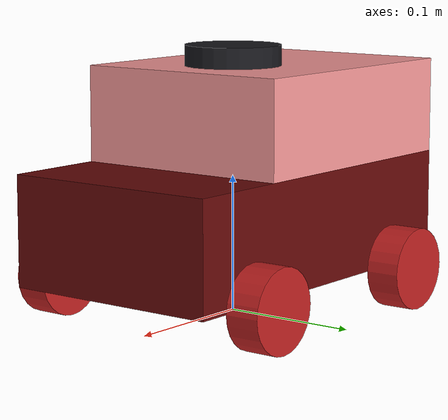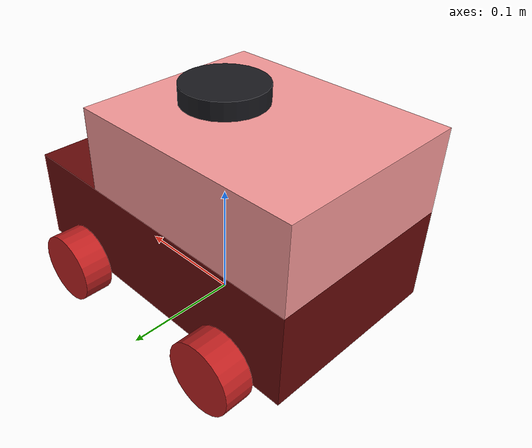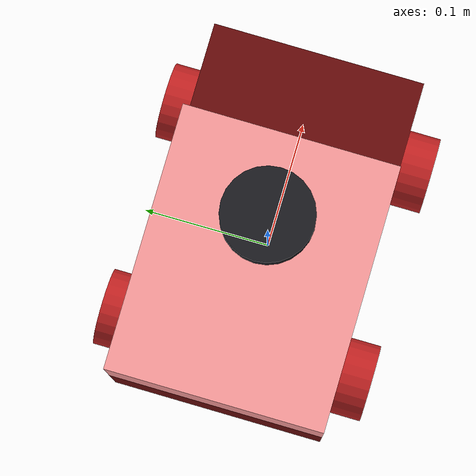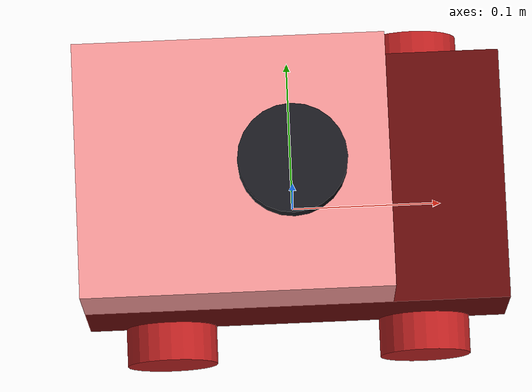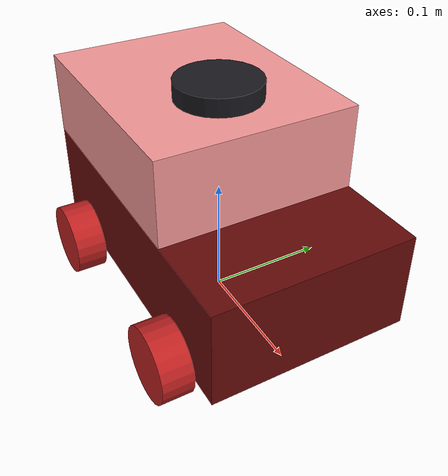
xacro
<?xml version="1.0"?>
<robot name="origincar_ackermann" xmlns:xacro="http://www.ros.org/wiki/xacro">
  <!-- 常量：圆周率，给圆柱旋转、激光扫描角度等地方使用。 -->
  <xacro:property name="PI" value="3.141592653589793"/>
  <!-- 左右轮距，单位米。这里把 x 方向理解为前后轴方向，y 方向为左右方向。 -->
  <xacro:property name="track" value="0.1682"/>
  <!-- 前后轴距，单位米。 -->
  <xacro:property name="wheelbase" value="0.189"/>
  <!-- 车轮圆柱厚度，单位米。 -->
  <xacro:property name="wheel_len" value="0.025"/>
  <!-- 车轮半径，单位米。 -->
  <xacro:property name="wheel_radius" value="0.03"/>
  <!-- 主车体长度，单位米。 -->
  <xacro:property name="body_length" value="0.276"/>
  <!-- 主车体宽度，这里按轴距减去轮厚近似，使轮子外观贴合车体。 -->
  <xacro:property name="body_width" value="${wheelbase - wheel_len}"/>
  <!-- 主车体高度，单位米。 -->
  <xacro:property name="body_height" value="0.08"/>
  <!-- 车体加上上层板后的总高度，单位米。 -->
  <xacro:property name="total_height" value="0.150"/>
  <!-- base_link 中心高度。车轮落在地面 z=0 时，车体中心位于 wheel_radius + body_height/2。 -->
  <xacro:property name="body_z" value="${wheel_radius + body_height / 2.0}"/>
  <!-- 主车体顶部高度。 -->
  <xacro:property name="top_z" value="${wheel_radius + body_height}"/>
  <!-- 顶部 2D 激光雷达外观圆柱半径和高度。 -->
  <xacro:property name="laser_radius" value="0.035"/>
  <xacro:property name="laser_height" value="0.025"/>

  <!--
    长方体惯性宏。
    mass 是质量，x/y/z 是盒子三边尺寸。惯性矩使用均匀长方体公式：
    Ixx = m(y^2 + z^2)/12，Iyy = m(x^2 + z^2)/12，Izz = m(x^2 + y^2)/12。
    Gazebo 需要合理惯性才能稳定仿真，即使本项目位姿主要由运动学插件直接设置。
  -->
  <xacro:macro name="box_inertial" params="mass x y z">
    <inertial>
      <mass value="${mass}"/>
      <origin xyz="0 0 0" rpy="0 0 0"/>
      <inertia
        ixx="${mass * (y * y + z * z) / 12.0}"
        ixy="0"
        ixz="0"
        iyy="${mass * (x * x + z * z) / 12.0}"
        iyz="0"
        izz="${mass * (x * x + y * y) / 12.0}"/>
    </inertial>
  </xacro:macro>

  <!--
    圆柱/车轮惯性宏。
    这里假设车轮圆柱轴线沿 y 轴，所以 Iyy 使用实心圆柱绕自身轴的公式 m*r^2/2。
  -->
  <xacro:macro name="wheel_inertial" params="mass radius length">
    <inertial>
      <mass value="${mass}"/>
      <origin xyz="0 0 0" rpy="0 0 0"/>
      <inertia
        ixx="${mass * (3.0 * radius * radius + length * length) / 12.0}"
        ixy="0"
        ixz="0"
        iyy="${mass * radius * radius / 2.0}"
        iyz="0"
        izz="${mass * (3.0 * radius * radius + length * length) / 12.0}"/>
    </inertial>
  </xacro:macro>

  <!--
    车轮 link 生成宏。
    name 是 link 名称，color_r/g/b 是 RViz 中的车轮颜色。
    每个车轮都有 visual、collision 和 inertial；Gazebo reference 用来补充摩擦和材质。
  -->
  <xacro:macro name="cylinder_wheel" params="name color_r color_g color_b">
    <link name="${name}">
      <visual>
        <!-- URDF 圆柱默认沿 z 轴，这里绕 x 轴旋转 90 度，让车轮轴线沿 y 轴。 -->
        <origin xyz="0 0 0" rpy="${PI / 2.0} 0 0"/>
        <geometry>
          <cylinder radius="${wheel_radius}" length="${wheel_len}"/>
        </geometry>
        <material name="${name}_mat">
          <color rgba="${color_r} ${color_g} ${color_b} 1"/>
        </material>
      </visual>
      <collision>
        <!-- 碰撞体与视觉模型保持一致。 -->
        <origin xyz="0 0 0" rpy="${PI / 2.0} 0 0"/>
        <geometry>
          <cylinder radius="${wheel_radius}" length="${wheel_len}"/>
        </geometry>
      </collision>
      <xacro:wheel_inertial mass="0.08" radius="${wheel_radius}" length="${wheel_len}"/>
    </link>
    <gazebo reference="${name}">
      <!-- 车轮摩擦系数，主要影响 Gazebo 物理接触；当前运动学插件直接设位姿，所以这里偏可视化/基础碰撞。 -->
      <mu1>1.0</mu1>
      <mu2>1.0</mu2>
      <material>Gazebo/Red</material>
    </gazebo>
  </xacro:macro>

  <!--
    base_footprint 是机器人在地面上的二维底盘参考点，z=0。
    导航和定位通常使用 base_footprint，避免车体高度影响 2D 规划。
  -->
  <link name="base_footprint"/>

  <!-- base_link 是车体三维中心，固定连接在 base_footprint 上方 body_z 处。 -->
  <joint name="base_footprint_joint" type="fixed">
    <parent link="base_footprint"/>
    <child link="base_link"/>
    <origin xyz="0 0 ${body_z}" rpy="0 0 0"/>
  </joint>

  <!-- 主车体：红色长方体，包含 visual/collision/inertial。 -->
  <link name="base_link">
    <visual>
      <geometry>
        <box size="${body_length} ${body_width} ${body_height}"/>
      </geometry>
      <origin xyz="0 0 0" rpy="0 0 0"/>
      <material name="origincar_body_red">
        <color rgba="${102/255} ${10/255} ${10/255} 1"/>
      </material>
    </visual>
    <collision>
      <geometry>
        <box size="${body_length} ${body_width} ${body_height}"/>
      </geometry>
    </collision>
    <xacro:box_inertial mass="1.2" x="${body_length}" y="${body_width}" z="${body_height}"/>
  </link>

  <!-- 上层板/车载电路板外观：粉色长方体，固定在主车体上方偏后位置。 -->
  <link name="board_link">
    <visual>
      <origin xyz="0 0 0" rpy="0 0 0"/>
      <geometry>
        <box size="0.200 ${body_width} ${total_height - body_height}"/>
      </geometry>
      <material name="origincar_board_pink">
        <color rgba="${246/255} ${152/255} ${152/255} 1"/>
      </material>
    </visual>
    <collision>
      <geometry>
        <box size="0.200 ${body_width} ${total_height - body_height}"/>
      </geometry>
    </collision>
    <xacro:box_inertial mass="0.25" x="0.200" y="${body_width}" z="${total_height - body_height}"/>
  </link>

  <!-- 上层板固定到 base_link。x 方向略偏向车体后方，z 方向位于主车体上方。 -->
  <joint name="board_joint" type="fixed">
    <parent link="base_link"/>
    <child link="board_link"/>
    <origin xyz="${-(body_length - 0.200) / 2.0} 0 ${(body_height + total_height - body_height) / 2.0}" rpy="0 0 0"/>
  </joint>

  <!-- IMU 外观 link：小黑盒，Gazebo 插件会在该 link 上挂 IMU 传感器。 -->
  <link name="imu_link">
    <visual>
      <geometry>
        <box size="0.025 0.025 0.010"/>
      </geometry>
      <material name="imu_black">
        <color rgba="0.05 0.05 0.05 1"/>
      </material>
    </visual>
    <collision>
      <geometry>
        <box size="0.025 0.025 0.010"/>
      </geometry>
    </collision>
    <xacro:box_inertial mass="0.02" x="0.025" y="0.025" z="0.010"/>
  </link>

  <!-- IMU 固定在车体顶部附近。 -->
  <joint name="imu_joint" type="fixed">
    <parent link="base_link"/>
    <child link="imu_link"/>
    <origin xyz="0 0 ${body_height / 2.0 + 0.010}" rpy="0 0 0"/>
  </joint>

  <!-- 2D 激光雷达外观 link：顶部深色圆柱。Gazebo ray sensor 挂在该 link 上。 -->
  <link name="laser_link">
    <visual>
      <origin xyz="0 0 0" rpy="0 0 0"/>
      <geometry>
        <cylinder radius="${laser_radius}" length="${laser_height}"/>
      </geometry>
      <material name="laser_dark">
        <color rgba="0.10 0.10 0.12 1"/>
      </material>
    </visual>
    <collision>
      <geometry>
        <cylinder radius="${laser_radius}" length="${laser_height}"/>
      </geometry>
    </collision>
    <xacro:wheel_inertial mass="0.12" radius="${laser_radius}" length="${laser_height}"/>
  </link>

  <!-- 激光雷达固定在车顶上方。 -->
  <joint name="laser_joint" type="fixed">
    <parent link="base_link"/>
    <child link="laser_link"/>
    <origin xyz="0 0 ${total_height - body_z + laser_height / 2.0 + 0.020}" rpy="0 0 0"/>
  </joint>

  <!--
    前轮转向中间 link。
    每个前轮先通过 steer_joint 绕 z 轴转向，再通过 wheel_joint 绕 y 轴滚动。
    这两个 link 本身不显示，只作为关节层级的连接点。
  -->
  <link name="front_left_steer_link">
    <xacro:box_inertial mass="0.03" x="0.01" y="0.01" z="0.01"/>
  </link>
  <link name="front_right_steer_link">
    <xacro:box_inertial mass="0.03" x="0.01" y="0.01" z="0.01"/>
  </link>

  <!-- 左前转向关节：绕 z 轴旋转，位置在前轴左侧。 -->
  <joint name="front_left_steer_joint" type="revolute">
    <parent link="base_link"/>
    <child link="front_left_steer_link"/>
    <origin xyz="${track / 2.0} ${wheelbase / 2.0} ${-body_z + wheel_radius}" rpy="0 0 0"/>
    <axis xyz="0 0 1"/>
    <limit lower="-0.75" upper="0.75" effort="2.0" velocity="5.0"/>
  </joint>

  <!-- 右前转向关节：绕 z 轴旋转，位置在前轴右侧。 -->
  <joint name="front_right_steer_joint" type="revolute">
    <parent link="base_link"/>
    <child link="front_right_steer_link"/>
    <origin xyz="${track / 2.0} ${-wheelbase / 2.0} ${-body_z + wheel_radius}" rpy="0 0 0"/>
    <axis xyz="0 0 1"/>
    <limit lower="-0.75" upper="0.75" effort="2.0" velocity="5.0"/>
  </joint>

  <!-- 四个车轮 link，通过上面的宏批量生成。 -->
  <xacro:cylinder_wheel name="front_left_wheel_link" color_r="0.745" color_g="0.129" color_b="0.129"/>
  <xacro:cylinder_wheel name="front_right_wheel_link" color_r="0.745" color_g="0.129" color_b="0.129"/>
  <xacro:cylinder_wheel name="rear_left_wheel_link" color_r="0.745" color_g="0.129" color_b="0.129"/>
  <xacro:cylinder_wheel name="rear_right_wheel_link" color_r="0.745" color_g="0.129" color_b="0.129"/>

  <!-- 左前车轮滚动关节：父 link 是左前转向 link，因此会跟着 steer_joint 一起改变朝向。 -->
  <joint name="front_left_wheel_joint" type="continuous">
    <parent link="front_left_steer_link"/>
    <child link="front_left_wheel_link"/>
    <origin xyz="0 0 0" rpy="0 0 0"/>
    <axis xyz="0 1 0"/>
  </joint>

  <!-- 右前车轮滚动关节。 -->
  <joint name="front_right_wheel_joint" type="continuous">
    <parent link="front_right_steer_link"/>
    <child link="front_right_wheel_link"/>
    <origin xyz="0 0 0" rpy="0 0 0"/>
    <axis xyz="0 1 0"/>
  </joint>

  <!-- 左后车轮滚动关节：后轮不转向，直接挂在 base_link 上。 -->
  <joint name="rear_left_wheel_joint" type="continuous">
    <parent link="base_link"/>
    <child link="rear_left_wheel_link"/>
    <origin xyz="${-track / 2.0} ${wheelbase / 2.0} ${-body_z + wheel_radius}" rpy="0 0 0"/>
    <axis xyz="0 1 0"/>
  </joint>

  <!-- 右后车轮滚动关节。 -->
  <joint name="rear_right_wheel_joint" type="continuous">
    <parent link="base_link"/>
    <child link="rear_right_wheel_link"/>
    <origin xyz="${-track / 2.0} ${-wheelbase / 2.0} ${-body_z + wheel_radius}" rpy="0 0 0"/>
    <axis xyz="0 1 0"/>
  </joint>

  <!-- Gazebo 中给主车体指定材质。 -->
  <gazebo reference="base_link">
    <material>Gazebo/Red</material>
  </gazebo>

  <!-- Gazebo 中给上层板指定材质。 -->
  <gazebo reference="board_link">
    <material>Gazebo/Pink</material>
  </gazebo>

  <!--
    顶部 2D 激光雷达传感器。
    Gazebo Fortress 的 CPU lidar 生成模拟激光，ros_gz_bridge / ros_ign_bridge
    把 Gazebo Transport 上的 /scan 桥接成 ROS 2 sensor_msgs/LaserScan。
  -->
  <gazebo reference="laser_link">
    <sensor name="top_laser" type="gpu_lidar">
      <!-- always_on=true 表示仿真启动后持续工作。 -->
      <always_on>true</always_on>
      <!-- 激光发布频率 10Hz。 -->
      <update_rate>10</update_rate>
      <topic>/scan</topic>
      <gz_frame_id>laser_link</gz_frame_id>
      <!-- 在 Gazebo GUI 中显示激光射线，便于调试传感器方向和范围。 -->
      <visualize>true</visualize>
      <lidar>
        <scan>
          <horizontal>
            <!-- 水平 720 条射线，覆盖 -pi 到 +pi，即 360 度扫描。 -->
            <samples>720</samples>
            <resolution>1</resolution>
            <min_angle>-${PI}</min_angle>
            <max_angle>${PI}</max_angle>
          </horizontal>
        </scan>
        <range>
          <!-- 激光最小/最大量程，单位米。max=8m 与 SLAM 参数保持一致。 -->
          <min>0.05</min>
          <max>8.0</max>
          <resolution>0.01</resolution>
        </range>
        <noise>
          <!-- 加少量高斯噪声，让仿真更接近真实传感器。 -->
          <type>gaussian</type>
          <mean>0.0</mean>
          <stddev>0.005</stddev>
        </noise>
      </lidar>
    </sensor>
  </gazebo>

  <!--
    IMU 传感器。
    当前导航主要依赖 /odom 和 /scan，IMU 作为仿真传感器输出预留，可供后续融合定位使用。
  -->
  <gazebo reference="imu_link">
    <sensor name="imu_sensor" type="imu">
      <always_on>true</always_on>
      <!-- IMU 发布频率 50Hz。 -->
      <update_rate>50</update_rate>
      <topic>/imu/data</topic>
      <gz_frame_id>imu_link</gz_frame_id>
      <visualize>false</visualize>
    </sensor>
  </gazebo>

  <!--
    自定义阿克曼运动学插件。
    插件源代码在 src/origincar_sim/src/ackermann_kinematic_plugin.cpp。
    它订阅 /cmd_vel 和 /ackermann_cmd，按阿克曼几何更新 Gazebo 模型位姿，
    并发布 /odom 与 odom -> base_footprint TF。
  -->
  <gazebo>
    <plugin name="origincar_ackermann_kinematic" filename="libackermann_kinematic_plugin.so">
      <!-- 控制输入和里程计输出话题。 -->
      <cmd_vel_topic>/cmd_vel</cmd_vel_topic>
      <ackermann_topic>/ackermann_cmd</ackermann_topic>
      <odom_topic>/odom</odom_topic>
      <!-- TF 坐标系名称。 -->
      <odom_frame>odom_combined</odom_frame>
      <base_frame>base_footprint</base_frame>
      <!-- 车辆几何参数，与文件顶部 xacro property 保持一致。 -->
      <wheelbase>${wheelbase}</wheelbase>
      <track_width>${track}</track_width>
      <wheel_radius>${wheel_radius}</wheel_radius>
      <!-- 运动学插件每帧把 base_footprint 固定在地面 z=0，避免物理引擎把模型拉穿地面。 -->
      <model_z>0.0</model_z>
      <!-- 最大前轮转角和命令超时停车时间。 -->
      <max_steering_angle>0.65</max_steering_angle>
      <command_timeout>0.5</command_timeout>
      <!-- 插件要控制的关节名，必须和上面 joint name 完全一致。 -->
      <front_left_steer_joint>front_left_steer_joint</front_left_steer_joint>
      <front_right_steer_joint>front_right_steer_joint</front_right_steer_joint>
      <front_left_wheel_joint>front_left_wheel_joint</front_left_wheel_joint>
      <front_right_wheel_joint>front_right_wheel_joint</front_right_wheel_joint>
      <rear_left_wheel_joint>rear_left_wheel_joint</rear_left_wheel_joint>
      <rear_right_wheel_joint>rear_right_wheel_joint</rear_right_wheel_joint>
    </plugin>
  </gazebo>
</robot>
